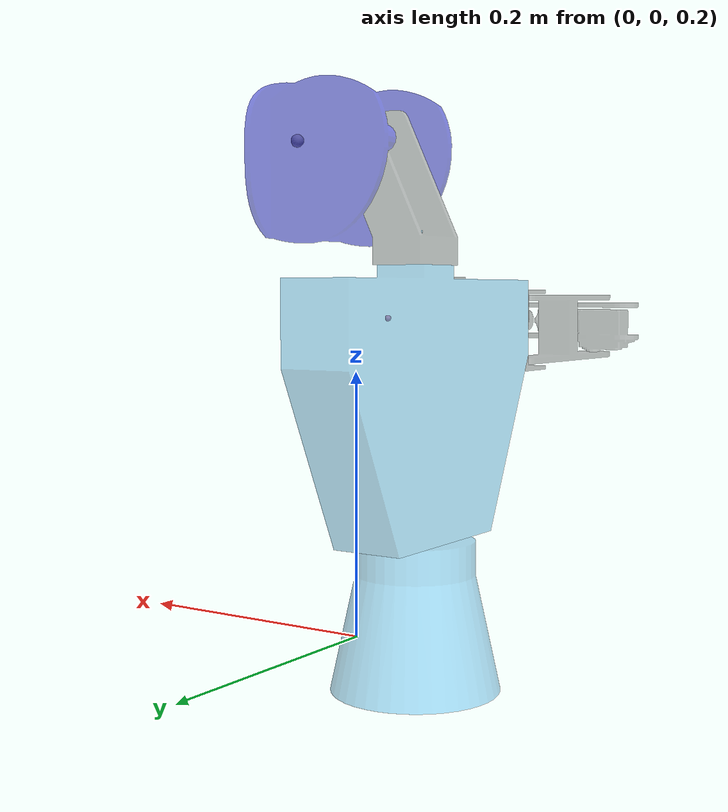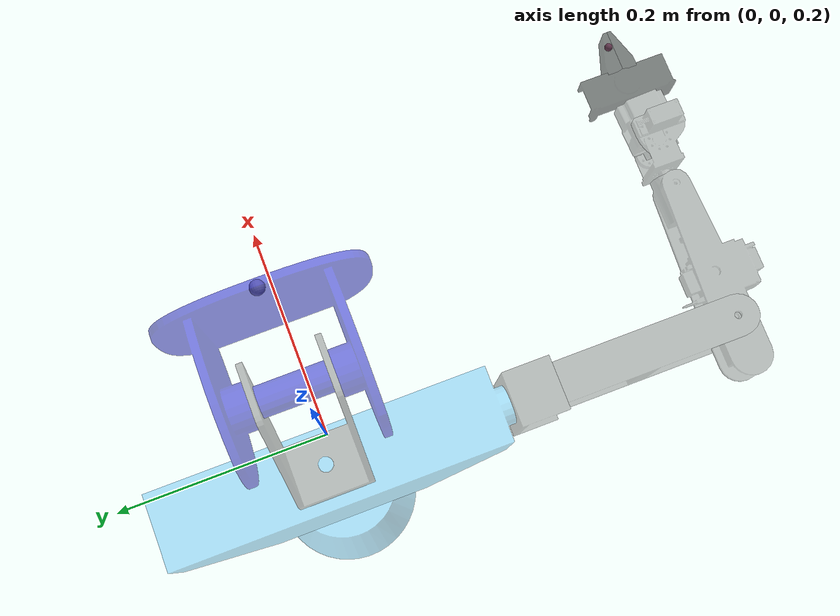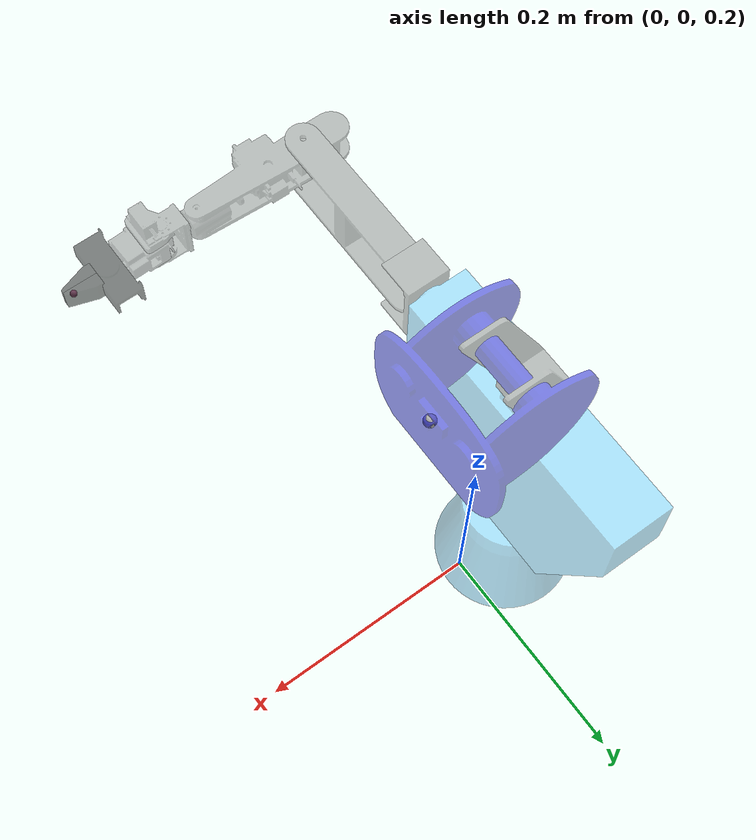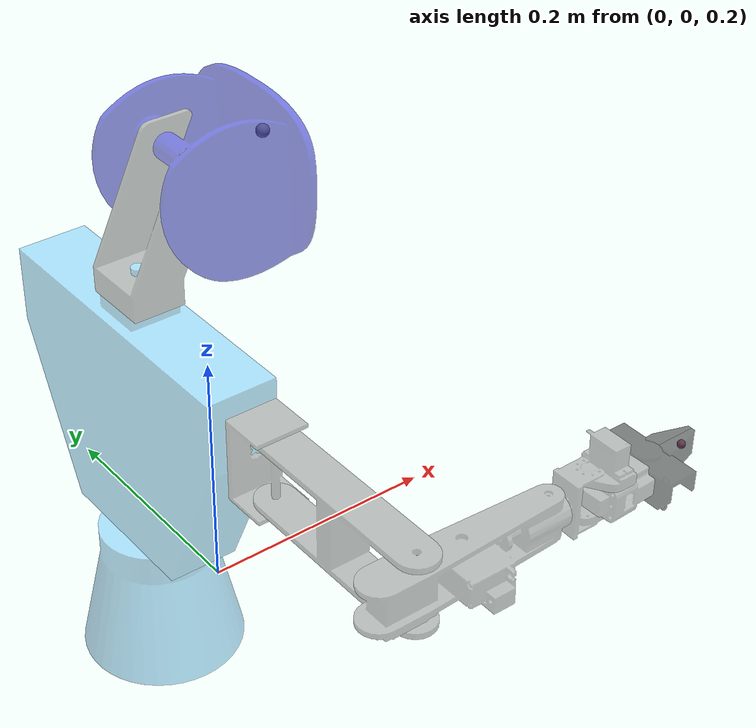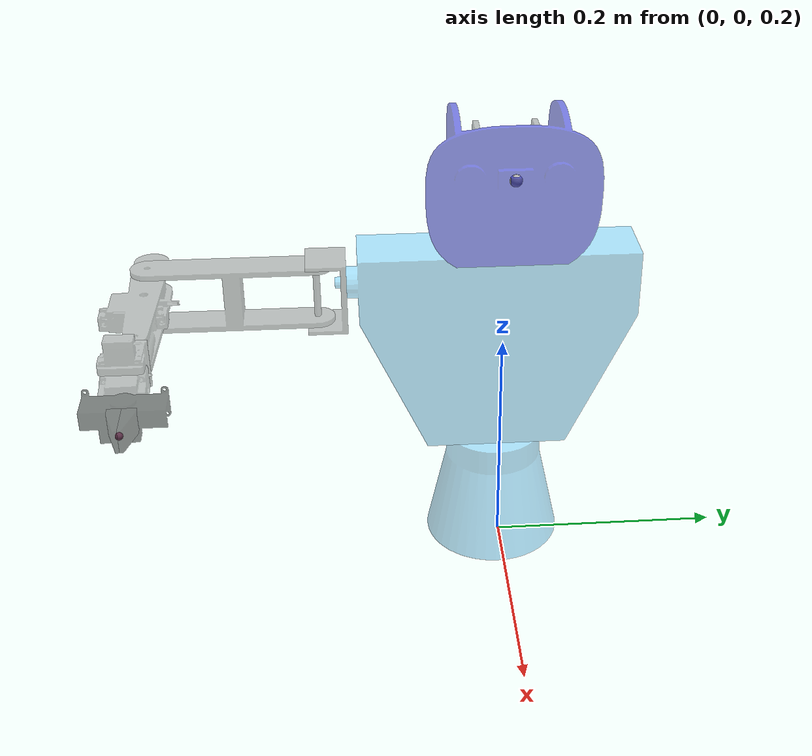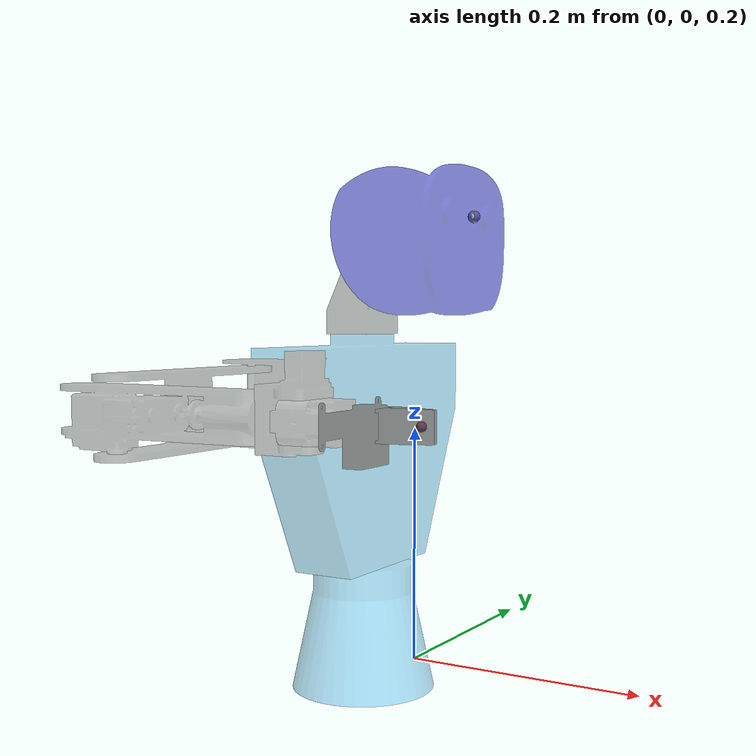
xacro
<?xml version="1.0"?>

<robot name="fratomo_torso" xmlns:xacro="http://ros.org/wiki/xacro">
  <xacro:include filename="$(find fratomo_pro_description)/urdf/fratomo_torso_macro.xacro" />

<!-- robot torso  -->
 <link name="world">
 </link>

 <joint name="glue2word" type="fixed">
        <parent link="world"/>
        <child link="base_link"/>
        <origin xyz="0 0 0"/>
    </joint>

 <link name="base_link">
 </link>

<xacro:fratomo_torso parent="base_link"/>

</robot>

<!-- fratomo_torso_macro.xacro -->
<robot name="fratomo_torso_macro" xmlns:xacro="http://www.ros.org/wiki/xacro">

  <!--All units in m-kg-s-radians unit system -->
  <xacro:property name="M_PI" value="3.1415926535897931" />
  <xacro:property name="M_PI_2" value="1.570796327" />
  <xacro:property name="DEG_TO_RAD" value="0.017453293" />
  <!-- propertys for joint controllers-->
  <xacro:property name="safety_controller_k_pos" value="100" />
  <xacro:property name="safety_controller_k_vel" value="2" />
  <xacro:property name="joint_damping" value="0.5" />
  <xacro:property name="max_effort" value="300"/>
  <xacro:property name="max_velocity" value="10"/>

	<!--Material Definition-->

   <material name="gray">
    <color rgba="0.5 0.5 0.5 0.5"/>
  </material>

  <material name="black">
    <color rgba="0 0 0 0.5"/>
  </material>

  <material name="purple">
    <color rgba="0.4 0.8 1 0.5"/>
  </material>

  <material name="white">
    <color rgba="1 1 1 0.5"/>
  </material>

  <material name="blue">
    <color rgba="0 0 0.8 0.5"/>
  </material>

  <!--Little helper macros to define the inertia matrix needed for links.-->
  <!--Cuboid-->
  <xacro:macro name="cuboid_inertia" params="width height length mass">
    <inertia ixx="${mass * (height * height + length * length) / 12}"
             iyy="${mass * (width * width + length * length) / 12}"
             izz="${mass * (width * width + height * height) / 12}"
             ixy="0" iyz="0" ixz="0"/>
  </xacro:macro>

  <!--Cylinder: length is along the z-axis! -->
  <xacro:macro name="cylinder_inertia" params="radius length mass">
    <inertia ixx="${mass * (3 * radius * radius + length * length) / 12}"
             izz="${mass * radius* radius / 2}"
             iyy="${mass * (3 * radius * radius + length * length) / 12}"
             ixy="0" iyz="0" ixz="0"/>
  </xacro:macro>
  <!--Trasmission macro for gazebo and controllers -->
  <xacro:macro name="transmission_block" params="joint_name">
      <transmission name="${joint_name}_tran1">
        <type>transmission_interface/SimpleTransmission</type>
        <joint name="${joint_name}">
          <hardwareInterface>hardware_interface/PositionJointInterface</hardwareInterface>
        </joint>
        <actuator name="${joint_name}_motor">
          <hardwareInterface>hardware_interface/PositionJointInterface</hardwareInterface>
          <mechanicalReduction>1</mechanicalReduction>
        </actuator>
      </transmission>
     </xacro:macro>

  <!-- WHOLE TORSO MACRO-->
  <xacro:macro name="fratomo_torso" params="parent" >

   <!-- links -->
    <link name="turnable">
      <visual>
        <geometry>
          <mesh filename="package://fratomo_pro_description/meshes/turnable.stl" scale="0.001 0.001 0.001 "/>
        </geometry>
        <material name="purple"/>
        <origin rpy="0 0 0" xyz="0 0 0"/>
      </visual>
      <collision>
        <geometry>
          <mesh filename="package://fratomo_pro_description/meshes/turnable.stl" scale="0.001 0.001 0.001 "/>
        </geometry>
        <origin rpy="0 0 0" xyz="0 0 0"/>
      </collision>
      <inertial>
        <xacro:cylinder_inertia radius="0.05" length="0.11" mass="1"/>
        <mass value="1" />
        <origin xyz="0 0 0.055" />
      </inertial>
    </link>

    <link name="torso">
      <visual>
        <geometry>
          <mesh filename="package://fratomo_pro_description/meshes/torso.stl" scale="0.001 0.001 0.001 "/>
        </geometry>
        <material name="purple"/>
        <origin rpy="0 0 0" xyz="0 0 0"/>
      </visual>
      <collision>
        <geometry>
          <mesh filename="package://fratomo_pro_description/meshes/torso.stl" scale="0.001 0.001 0.001 "/>
        </geometry>
        <origin rpy="0 0 0" xyz="0 0 0"/>
      </collision>
      <inertial>
        <xacro:cuboid_inertia width="0.05" height="0.130" length="0.2" mass="1"/>
        <mass value="1" />
        <origin xyz="0 0 0.05" />
      </inertial>
    </link>

    <link name="neck">
      <visual>
        <geometry>
          <mesh filename="package://fratomo_pro_description/meshes/neck.stl" scale="0.001 0.001 0.001 "/>
        </geometry>
        <material name="gray"/>
        <origin rpy="0 0 0" xyz="0 0 0"/>
      </visual>
      <collision>
        <geometry>
          <mesh filename="package://fratomo_pro_description/meshes/neck.stl" scale="0.001 0.001 0.001 "/>
        </geometry>
        <origin rpy="0 0 0" xyz="0 0 0"/>
      </collision>
      <inertial>
        <xacro:cuboid_inertia width="0.05" height="0.02" length="0.09" mass="1"/>
        <mass value="0.1" />
        <origin xyz="0.02 0 0.04" />
      </inertial>
    </link>

    <link name="head">
      <visual>
        <geometry>
          <mesh filename="package://fratomo_pro_description/meshes/head.stl" scale="0.001 0.001 0.001 "/>
        </geometry>
        <material name="blue"/>
        <origin rpy="0 -1.57075 0" xyz="0 0 0"/>
      </visual>
      <collision>
        <geometry>
          <mesh filename="package://fratomo_pro_description/meshes/head.stl" scale="0.001 0.001 0.001 "/>
        </geometry>
        <origin rpy="0 -1.57075 0" xyz="0 0 0"/>
      </collision>
      <inertial>
        <xacro:cuboid_inertia width="0.09" height="0.12" length="0.09" mass="0.2"/>
        <mass value="0.2" />
        <origin xyz="0.03 0 0.03" />
      </inertial>
    </link>

    <link name="shoulder">
      <visual>
        <geometry>
          <mesh filename="package://fratomo_pro_description/meshes/shoulder.stl" scale="0.001 0.001 0.001 "/>
        </geometry>
        <material name="gray"/>
        <origin rpy="3.14159 0 0" xyz="0 0 0"/>
      </visual>
      <collision>
        <geometry>
          <mesh filename="package://fratomo_pro_description/meshes/shoulder.stl" scale="0.001 0.001 0.001 "/>
        </geometry>
        <origin rpy="3.14159 0 0" xyz="0 0 0"/>
      </collision>
      <inertial>
        <xacro:cuboid_inertia width="0.058" height="0.03" length="0.066" mass="0.2"/>
        <mass value="0.2" />
        <origin xyz="0.00 0.01 0.03" />
      </inertial>

    </link>

    <link name="arm_l1">
      <visual>
        <geometry>
          <mesh filename="package://fratomo_pro_description/meshes/arm_l1.stl" scale="0.001 0.001 0.001 "/>
        </geometry>
        <material name="gray"/>
        <origin rpy="0 0 0" xyz="0 0 0"/>
      </visual>
      <collision>
        <geometry>
          <mesh filename="package://fratomo_pro_description/meshes/arm_l1.stl" scale="0.001 0.001 0.001 "/>
        </geometry>
        <origin rpy="0 0 0" xyz="0 0 0"/>
      </collision>
       <inertial>
        <xacro:cuboid_inertia width="0.045" height="0.144" length="0.02" mass="0.1"/>
        <mass value="0.1" />
        <origin xyz="0.00 -0.07 0.0" />
      </inertial>

    </link>

    <link name="forearm">
      <visual>
        <geometry>
          <mesh filename="package://fratomo_pro_description/meshes/forearm.stl" scale="0.001 0.001 0.001 "/>
        </geometry>
        <material name="gray"/>
        <origin rpy="0 3.14159 0" xyz="0.01822 0 0"/>
      </visual>
      <collision>
        <geometry>
          <mesh filename="package://fratomo_pro_description/meshes/forearm.stl" scale="0.001 0.001 0.001 "/>
        </geometry>
        <origin rpy="0 3.14159 0" xyz="0.01822 0 0"/>
      </collision>
      <inertial>
        <!--xacro:cuboid_inertia width="0.045" height="0.170" length="0.025" mass="0.3"/-->
        <inertia ixx="0.0001" ixy="0.000"  ixz="0.000"
                 iyy="0.0001" iyz="0.000"
                 izz="0.0001"/>
        <mass value="0.3" />
        <origin xyz="0.00 -0.04 0.0" />
      </inertial>
    </link>

    <link name="wrist_shaft">
      <visual>
        <geometry>
          <mesh filename="package://fratomo_pro_description/meshes/wrist_shaft.stl" scale="0.001 0.001 0.001 "/>
        </geometry>
        <material name="gray"/>
        <origin rpy="0 0 1.57075" xyz="-0.115 -0.0227 0"/>
      </visual>
      <collision>
        <geometry>
          <mesh filename="package://fratomo_pro_description/meshes/wrist_shaft.stl" scale="0.001 0.001 0.001 "/>
        </geometry>
        <origin rpy="0 0 1.57075" xyz="-0.115 -0.0227 0"/>
      </collision>
       <inertial>
        <!--xacro:cuboid_inertia width="0.015" height="0.05" length="0.020" mass="0.02"/-->
        <inertia ixx="0.0001" ixy="0.000"  ixz="0.000"
                 iyy="0.0001" iyz="0.000"
                 izz="0.0001"/>
        <mass value="0.02" />
        <origin xyz="0.008 0.0 0.0" />
      </inertial>
    </link>

    <link name="wrist">
      <visual>
        <geometry>
          <mesh filename="package://fratomo_pro_description/meshes/wrist.stl" scale="0.001 0.001 0.001 "/>
        </geometry>
        <material name="gray"/>
        <origin rpy="0 0 1.57075" xyz="-0.1503 -0.0227 0"/>
      </visual>
      <collision>
        <geometry>
          <mesh filename="package://fratomo_pro_description/meshes/wrist.stl" scale="0.001 0.001 0.001 "/>
        </geometry>
        <origin rpy="0 0 1.57075" xyz="-0.1503 -0.0227 0"/>
      </collision>
      <inertial>
        <!--xacro:cuboid_inertia width="0.040" height="0.05" length="0.04" mass="0.1"/-->
        <inertia ixx="0.0001" ixy="0.000"  ixz="0.000"
                 iyy="0.0001" iyz="0.000"
                 izz="0.0001"/>
        <mass value="0.1" />
        <origin xyz="0.0 0.01 0.0" />
      </inertial>
    </link>

    <link name="gripper">
      <visual>
        <geometry>
          <mesh filename="package://fratomo_pro_description/meshes/gripperBody.stl" scale="0.001 0.001 0.001 "/>
        </geometry>
        <material name="black"/>
        <origin rpy="0 0 1.57075" xyz="0 0 0"/>
      </visual>
      <collision>
        <geometry>
          <mesh filename="package://fratomo_pro_description/meshes/gripperBody.stl" scale="0.001 0.001 0.001 "/>
        </geometry>
        <origin rpy="0 0 1.57075" xyz="0 0 0"/>
      </collision>
       <inertial>
        <!--xacro:cuboid_inertia width="0.05" height="0.06" length="0.06" mass="0.2"/-->
        <inertia ixx="0.0001" ixy="0.000"  ixz="0.000"
                 iyy="0.0001" iyz="0.000"
                 izz="0.0001"/>
        <mass value="0.001" />
        <mass value="0.2" />
        <origin xyz="0.01 0.00 0.0" />
      </inertial>
    </link>

    <link name="finger_l">
      <visual>
        <geometry>
          <mesh filename="package://fratomo_pro_description/meshes/finger_l.stl" scale="0.001 0.001 0.001 "/>
        </geometry>
        <material name="black"/>
        <origin rpy="0 0 1.57075" xyz="0 0 0"/>
      </visual>
      <collision>
        <geometry>
          <mesh filename="package://fratomo_pro_description/meshes/finger_l.stl" scale="0.001 0.001 0.001 "/>
        </geometry>
        <origin rpy="0 0 1.57075" xyz="0 0 0"/>
      </collision>
       <inertial>
        <inertia ixx="0.0001" ixy="0.000"  ixz="0.000"
                 iyy="0.0001" iyz="0.000"
                 izz="0.0001"/>
        <mass value="0.001" />
        <origin xyz="0 0 0" />
      </inertial>
    </link>

    <link name="finger_r">
      <visual>
        <geometry>
          <mesh filename="package://fratomo_pro_description/meshes/finger_r.stl" scale="0.001 0.001 0.001 "/>
        </geometry>
        <material name="black"/>
        <origin rpy="0 0 1.57075" xyz="0 0 0"/>
      </visual>
      <collision>
        <geometry>
          <mesh filename="package://fratomo_pro_description/meshes/finger_r.stl" scale="0.001 0.001 0.001 "/>
        </geometry>
        <origin rpy="0 0 1.57075" xyz="0 0 0"/>
      </collision>
      <inertial>
        <inertia ixx="0.0001" ixy="0.000"  ixz="0.000"
                 iyy="0.0001" iyz="0.000"
                 izz="0.0001"/>
        <mass value="0.001" />
        <origin xyz="0 0 0" />
      </inertial>
    </link>

<!-- dummy camera, ee links -->
    <link name="end_effector">
      <visual>
        <geometry>
          <sphere radius="0.003"/>
        </geometry>
      </visual>
    </link>

    <link name="camera">
      <visual>
        <geometry>
          <sphere radius="0.005"/>
        </geometry>
      </visual>
    </link>

<!-- joints -->
    <joint name="base_to_turnable" type="fixed">
        <parent link="${parent}"/>
        <child link="turnable"/>
        <origin xyz="-0.052 0 0.169"/>
    </joint>

    <joint name="turnable_to_torso" type="revolute">
        <parent link="turnable"/>
        <child link="torso"/>
        <origin xyz="0 0 0.11"/>
        <axis xyz="0 0 1"/>
        <limit effort="10.0" velocity="1" lower="-1.57075" upper="1.57075"/>
        <safety_controller soft_lower_limit="-1.57075"
                           soft_upper_limit="1.57075"
                           k_position="${safety_controller_k_pos}"
                           k_velocity="${safety_controller_k_vel}"/>
       <dynamics damping="${joint_damping*6}"/>
    </joint>

    <joint name="torso_to_neck" type="revolute">
        <parent link="torso"/>
        <child link="neck"/>
        <origin xyz="0 0 0.2"/>
        <axis xyz="0 0 1"/>
        <limit effort="10.0" velocity="1" lower="-1.57075" upper="1.57075"/>
        <safety_controller soft_lower_limit="-1.57075"
                           soft_upper_limit="1.57075"
                           k_position="${safety_controller_k_pos}"
                           k_velocity="${safety_controller_k_vel}"/>
       <dynamics damping="${joint_damping}"/>
    </joint>

    <joint name="neck_to_head" type="revolute">
        <parent link="neck"/>
        <child link="head"/>
        <origin rpy="0 1.57075 0" xyz="0.041 0 0.095"/>
        <axis xyz="0 1 0"/>
        <limit effort="10.0" velocity="1" lower="-1.57075" upper="0.78539"/>
        <safety_controller soft_lower_limit="-1.57075"
                           soft_upper_limit="0.78539"
                           k_position="${safety_controller_k_pos}"
                           k_velocity="${safety_controller_k_vel}"/>
       <dynamics damping="${joint_damping}"/>
    </joint>

    <joint name="head_to_camera" type="fixed">
        <parent link="head"/>
        <child link="camera"/>
        <origin rpy="0 0 -1.57075"  xyz="0.0 0.0 0.065 "/>
    </joint>

    <joint name="torso_to_shoulder" type="revolute">
        <parent link="torso"/>
        <child link="shoulder"/>
        <origin rpy="3.14159 1.57075 0" xyz="0 -0.1325 0.150"/>
        <axis xyz="0 1 0"/>
        <limit effort="10.0" velocity="1" upper="1.57075" lower="-1.57075"/>
         <safety_controller soft_lower_limit="-1.57075"
                           soft_upper_limit="1.57075"
                           k_position="${safety_controller_k_pos}"
                           k_velocity="${safety_controller_k_vel}"/>
       <dynamics damping="${joint_damping}"/>
    </joint>

    <joint name="shoulder_to_arm_l1" type="revolute">
        <parent link="shoulder"/>
        <child link="arm_l1"/>
        <origin rpy="3.14159 0 0" xyz="0.0 0.026 0.0"/>
        <axis xyz="1 0 0"/>
        <limit effort="10.0" velocity="1" lower="-1.57075" upper="0.78539"/>
         <safety_controller soft_lower_limit="-1.57075"
                           soft_upper_limit="0.78539"
                           k_position="${safety_controller_k_pos}"
                           k_velocity="${safety_controller_k_vel}"/>
       <dynamics damping="${joint_damping}"/>
    </joint>

    <joint name="arm_l1_to_forearm" type="revolute">
        <parent link="arm_l1"/>
        <child link="forearm"/>
        <origin rpy="-1.57075 0 0" xyz="0.0 -0.144 0.0"/>
        <axis xyz="1 0 0"/>
        <limit effort="10.0" velocity="1" upper="1.57075" lower="-1.57075"/>
        <safety_controller soft_lower_limit="-1.57075"
                           soft_upper_limit="1.57075"
                           k_position="${safety_controller_k_pos}"
                           k_velocity="${safety_controller_k_vel}"/>
       <dynamics damping="${joint_damping}"/>
    </joint>

    <joint name="forearm_to_wrist_shaft" type="revolute">
        <parent link="forearm"/>
        <child link="wrist_shaft"/>
        <origin rpy="0 0 -1.57075" xyz="-0.00448 -0.11507 0.0"/>
        <axis xyz="1 0 0"/>
        <limit effort="10.0" velocity="1" upper="1.57075" lower="-1.57075"/>
        <safety_controller soft_lower_limit="-1.57075"
                           soft_upper_limit="1.57075"
                           k_position="${safety_controller_k_pos}"
                           k_velocity="${safety_controller_k_vel}"/>
       <dynamics damping="${joint_damping}"/>
    </joint>

    <joint name="wrist_shaft_to_wrist" type="revolute">
        <parent link="wrist_shaft"/>
        <child link="wrist"/>
        <origin rpy="0 0 0" xyz="0.03534 0.0 0.0"/>
        <axis xyz="0 1 0"/>
        <limit effort="10.0" velocity="1" upper="1.57075" lower="-1.57075"/>
        <safety_controller soft_lower_limit="-1.57075"
                           soft_upper_limit="1.57075"
                           k_position="${safety_controller_k_pos}"
                           k_velocity="${safety_controller_k_vel}"/>
       <dynamics damping="${joint_damping}"/>
    </joint>

    <joint name="wrist_to_gripper" type="revolute">
        <parent link="wrist"/>
        <child link="gripper"/>
        <origin rpy="1.57075 0 0" xyz="0.0284 0.0 0.0"/>
        <axis xyz="1 0 0"/>
        <limit effort="10.0" velocity="1" upper="1.57075" lower="-1.57075"/>
        <safety_controller soft_lower_limit="-1.57075"
                           soft_upper_limit="1.57075"
                           k_position="${safety_controller_k_pos}"
                           k_velocity="${safety_controller_k_vel}"/>
       <dynamics damping="${joint_damping}"/>
    </joint>

    <joint name="gripper_to_end_effector" type="fixed">
        <parent link="gripper"/>
        <child link="end_effector"/>
        <origin rpy="0 0 0" xyz="0.045 0.0 0.0"/>
    </joint>

    <joint name="gripper_to_finger_l" type="prismatic">
        <parent link="gripper"/>
        <child link="finger_l"/>
        <origin rpy="0 0 0" xyz="0 0 0"/>
        <axis xyz="0 1 0"/>
        <limit effort="10.0" velocity="1" upper="0.02" lower="0"/>
        <safety_controller soft_lower_limit="0"
                           soft_upper_limit="0.02"
                           k_position="${safety_controller_k_pos}"
                           k_velocity="${safety_controller_k_vel}"/>
       <dynamics damping="${joint_damping}"/>
    </joint>

    <joint name="gripper_to_finger_r" type="prismatic">
        <parent link="gripper"/>
        <child link="finger_r"/>
        <origin rpy="0 0 0" xyz="0 0 0"/>
        <axis xyz="0 1 0"/>
        <limit effort="10.0" velocity="1" upper="0.02" lower="0"/>
        <mimic joint="gripper_to_finger_l" multiplier="-1" offset ="0"/>
        <safety_controller soft_lower_limit="0"
                           soft_upper_limit="0.02"
                           k_position="${safety_controller_k_pos}"
                           k_velocity="${safety_controller_k_vel}"/>
       <dynamics damping="${joint_damping}"/>
    </joint>

    <xacro:transmission_block joint_name="turnable_to_torso"/>
    <xacro:transmission_block joint_name="torso_to_neck"/>
    <xacro:transmission_block joint_name="neck_to_head"/>
    <xacro:transmission_block joint_name="torso_to_shoulder"/>
    <xacro:transmission_block joint_name="shoulder_to_arm_l1"/>
    <xacro:transmission_block joint_name="arm_l1_to_forearm"/>
    <xacro:transmission_block joint_name="forearm_to_wrist_shaft"/>
    <xacro:transmission_block joint_name="wrist_shaft_to_wrist"/>
    <xacro:transmission_block joint_name="wrist_to_gripper"/>
    <xacro:transmission_block joint_name="gripper_to_finger_l"/>

    <gazebo>
      <plugin name="gazebo_ros_control" filename="libgazebo_ros_control.so">
        <robotNamespace>/fratomo</robotNamespace>
        <robotParam>fratomo_robot_description</robotParam>
        <robotSimType>gazebo_ros_control/DefaultRobotHWSim</robotSimType>
        <legacyModeNS>true</legacyModeNS>
      </plugin>
    </gazebo>

    <gazebo reference="turnable">
      <material>Gazebo/Blue</material>
    </gazebo>
    <gazebo reference="torso">
      <material>Gazebo/Orange</material>
    </gazebo>
    <gazebo reference="neck">
      <material>Gazebo/Grey</material>
    </gazebo>
    <gazebo reference="head">
      <material>Gazebo/Blue</material>
    </gazebo>
    <gazebo reference="shoulder">
      <material>Gazebo/Grey</material>
    </gazebo>
    <gazebo reference="arm_l1">
      <material>Gazebo/Grey</material>
    </gazebo>
    <gazebo reference="forearm">
      <material>Gazebo/Grey</material>
    </gazebo>
    <gazebo reference="wrist_shaft">
      <material>Gazebo/Grey</material>
    </gazebo>
    <gazebo reference="wrist">
      <material>Gazebo/Grey</material>
    </gazebo>
    <gazebo reference="gripper">
      <material>Gazebo/Black</material>
    </gazebo>
    <gazebo reference="finger_l">
      <material>Gazebo/Black</material>
    </gazebo>
    <gazebo reference="finger_r">
      <material>Gazebo/Black</material>
    </gazebo>

  </xacro:macro>
</robot>
